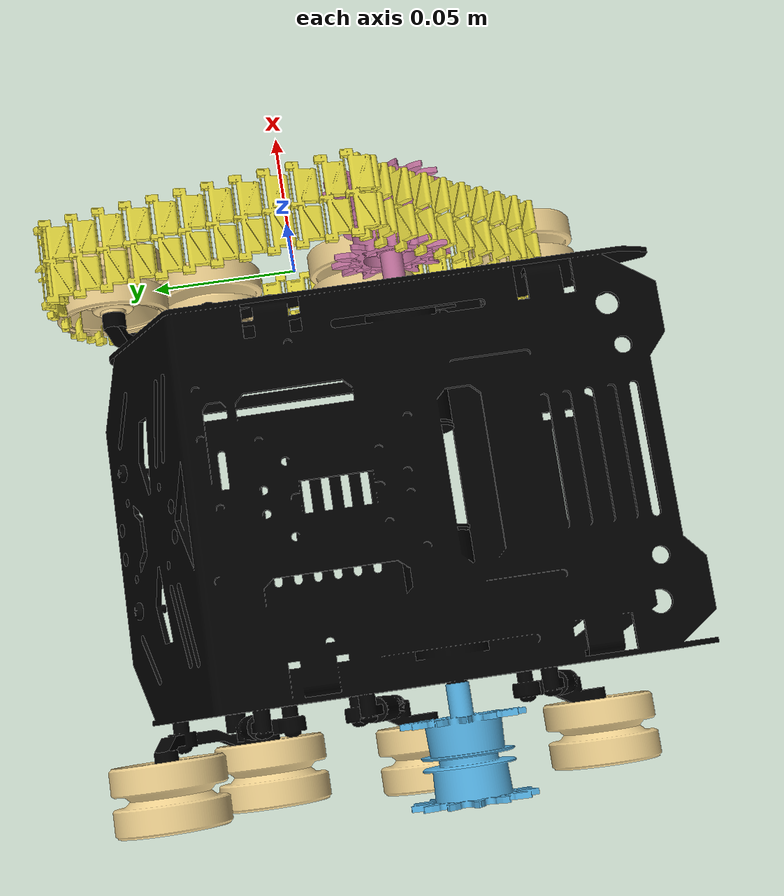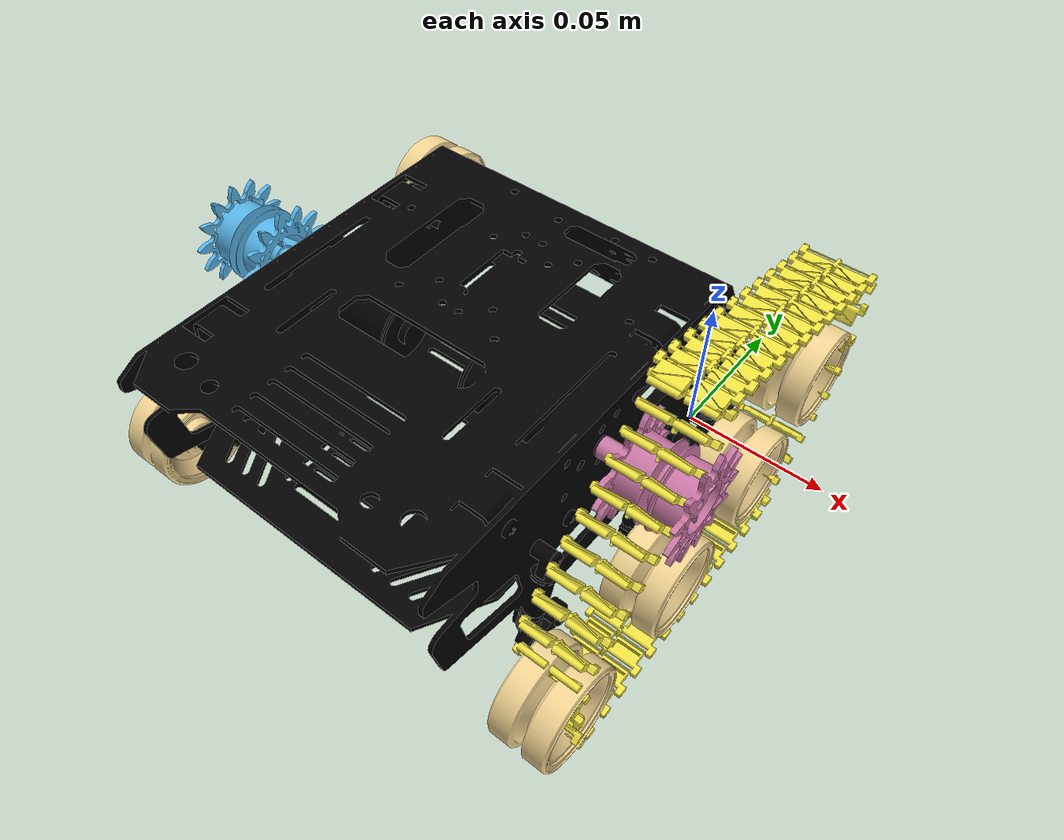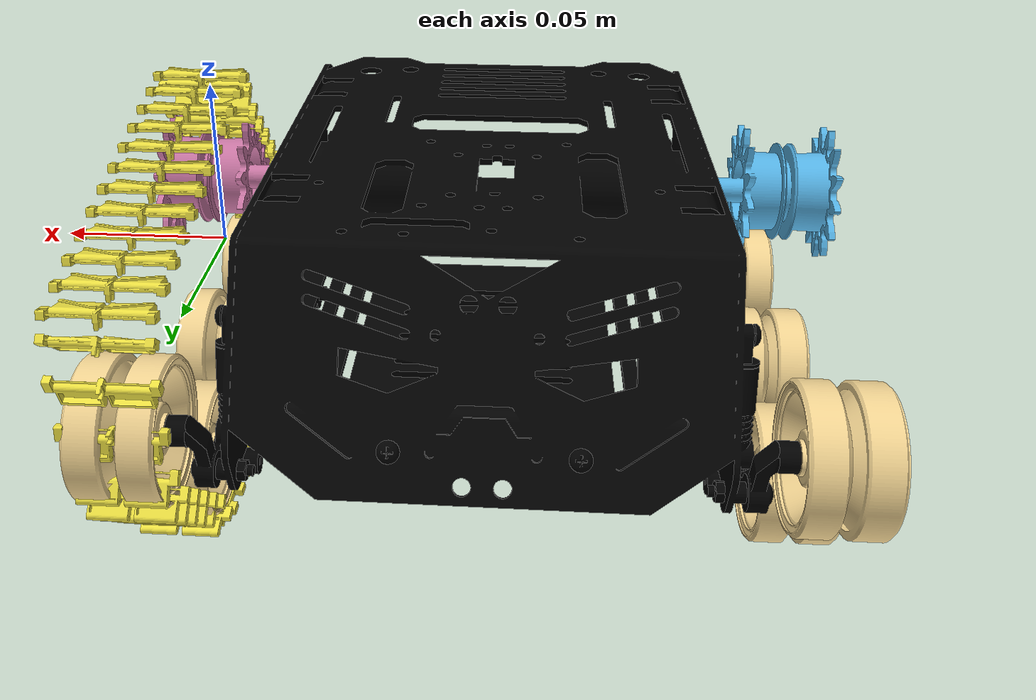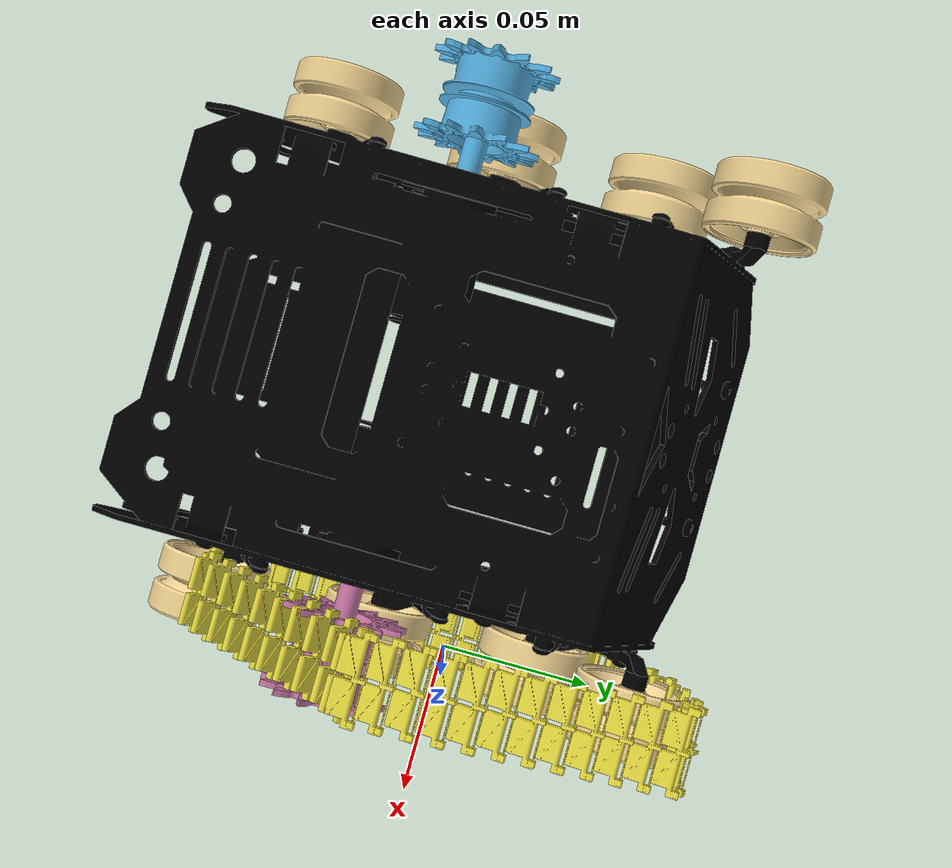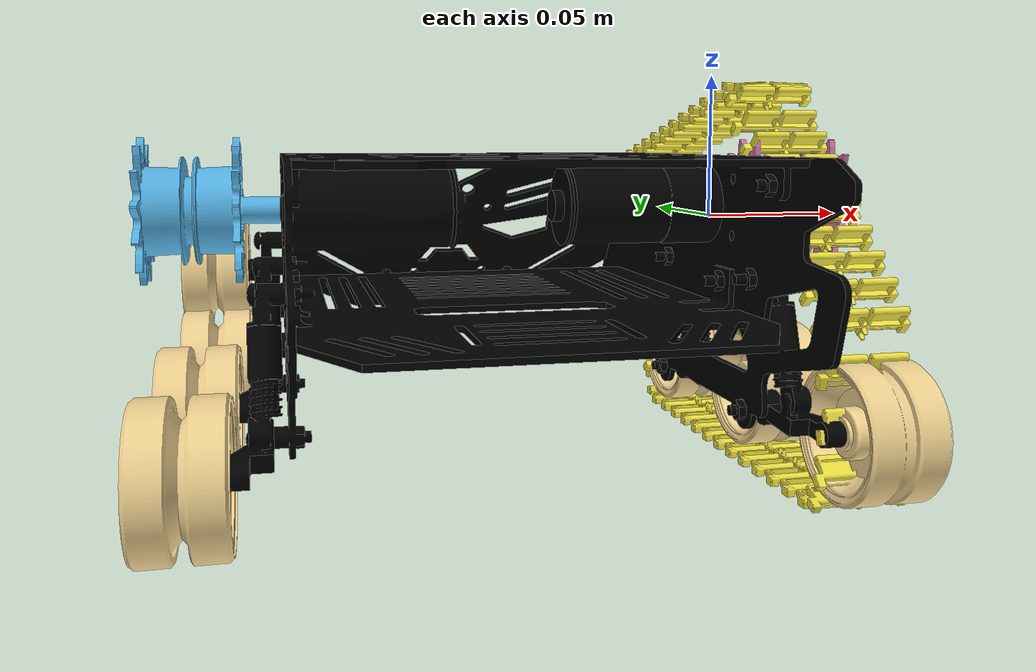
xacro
<?xml version="1.0" encoding="UTF-8"?>

<robot xmlns:xacro="http://www.ros.org/wiki/xacro" name="DFRbot">

    <!-- module -->
    <xacro:include filename="base.xacro" />
    <xacro:include
        filename="road_wheel.xacro" />
    <xacro:include filename="common.xacro" />
    <xacro:include
        filename="sprocket.xacro" />
    <xacro:include filename="track_path_fusion.xacro" />
    <!-- args -->
    <!-- dimensions / properties -->

    <!-- Right Sprocket -->
    <xacro:property name="rs_xyz"
        value="-0.003683312846951794 0.033058568904078316 0.0958176724476687" />
    <xacro:property
        name="rs_rpy"
        value="6.078575305090689e-16 -2.6599521792892063e-14 -1.5707963267948963" />
    <xacro:property
        name="rs_joint_xyz"
        value="-0.013663679999999827 -0.03474188000000015 0.006539760000000028" />
    <xacro:property
        name="rs_joint_rpy"
        value="-1.5707963267948648 -7.092844299934858e-16 -1.5707963267948912" />
    <xacro:property
        name="rs_inertial_xyz"
        value="4.041040893021375e-09 1.4369512937707497e-05 0.02455129089491322" />
    <xacro:property
        name="rs_inertial_rpy" value="1.2469549982861393e-62 -0.0 0.0" />
    <xacro:property
        name="rs_mass" value="0.09152151104684562" />
    <xacro:property name="rs_ixx"
        value="1.312943021186723e-05" />
    <xacro:property name="rs_iyy" value="1.3125134949870743e-05" />
    <xacro:property
        name="rs_izz" value="1.102396481554491e-05" />
    <xacro:property name="rs_ixy"
        value="-1.364702215166449e-15" />
    <xacro:property name="rs_iyz"
        value="-1.0407888211876016e-09" />
    <xacro:property name="rs_ixz"
        value="1.0267434169943288e-17" />

    <!-- Left Sprocket -->
    <xacro:property name="ls_xyz"
        value="-0.003683312846951634 -0.03305856890407353 -0.06983656251086988" />
    <xacro:property
        name="ls_rpy"
        value="-5.065392549852166e-16 1.3345386098308293e-14 1.5707963267948963" />
    <xacro:property
        name="ls_joint_xyz"
        value="-0.15266367999999983 -0.034741880000000995 0.006539760000000062" />
    <xacro:property
        name="ls_joint_rpy"
        value="1.5707963267948937 -7.092844299934858e-16 -1.5707963267948912" />
    <xacro:property
        name="ls_inertial_xyz"
        value="4.041038526025887e-09 1.4366010886163183e-05 0.024551290914634587" />
    <xacro:property
        name="ls_inertial_rpy" value="3.94430452610506e-31 -0.0 3.889384548663214e-62" />
    <xacro:property
        name="ls_mass" value="0.09152151104684574" />
    <xacro:property name="ls_ixx"
        value="1.3129430211868475e-05" />
    <xacro:property name="ls_iyy" value="1.312513494987214e-05" />
    <xacro:property
        name="ls_izz" value="1.1023964815545466e-05" />
    <xacro:property name="ls_ixy"
        value="-1.364227876715987e-15" />
    <xacro:property name="ls_iyz"
        value="-1.0407888212510166e-09" />
    <xacro:property name="ls_ixz"
        value="1.0191184439849799e-17" />

    <!-- Left Road Wheel 1 -->
    <xacro:property name="lw1_xyz"
        value="0.07013659583942188 -0.10186776229084465 0.07010007530246995" />
    <xacro:property
        name="lw1_rpy"
        value="1.5707963267948963 1.5707963267948881 0" />
    <xacro:property name="lw1_joint_xyz"
        value="-0.16696368000000036 0.06963123999999911 -0.024013450000000033" />
    <xacro:property
        name="lw1_joint_rpy"
        value="-1.570796326794895 -7.092844299934858e-16 -1.5707963267948912" />
    <xacro:property
        name="lw1_inertial_xyz"
        value="2.8461329648621357e-09 3.064652016604441e-09 -0.00958088928816288" />
    <xacro:property
        name="lw1_inertial_rpy"
        value="1.246954998286142e-62 -0.0 0.0" />
    <xacro:property name="lw1_mass"
        value="0.11216702343401005" />
    <xacro:property name="lw1_ixx" value="1.68783266885227e-05" />
    <xacro:property
        name="lw1_iyy" value="1.6878326689367083e-05" />
    <xacro:property name="lw1_izz"
        value="2.6216797929676883e-05" />
    <xacro:property name="lw1_ixy"
        value="-1.3552527156068686e-18" />
    <xacro:property name="lw1_iyz"
        value="-5.253236442911686e-19" />
    <xacro:property name="lw1_ixz"
        value="6.441695322810937e-18" />

    <!-- Left Road Wheel 2 -->
    <xacro:property name="lw2_xyz"
        value="0.004355632642285125 0.09857161061744062 -0.07010007530246995" />
    <xacro:property
        name="lw2_rpy"
        value="-1.570796326794897 -1.5707963267948883 0" />
    <xacro:property name="lw2_joint_xyz"
        value="-0.16546368000000009 0.035092679999999044 -0.055255860000000025" />
    <xacro:property
        name="lw2_joint_rpy"
        value="1.5707963267948981 -7.092844299934858e-16 -1.5707963267948912" />
    <xacro:property
        name="lw2_inertial_xyz"
        value="4.519537069036517e-09 3.73821126053997e-09 0.009580889288162987" />
    <xacro:property
        name="lw2_inertial_rpy"
        value="1.246954998286142e-62 -0.0 0.0" />
    <xacro:property name="lw2_mass"
        value="0.11216702343401003" />
    <xacro:property name="lw2_ixx" value="1.6878326688520098e-05" />
    <xacro:property
        name="lw2_iyy" value="1.6878326689365782e-05" />
    <xacro:property name="lw2_izz"
        value="2.6216797929678346e-05" />
    <xacro:property name="lw2_ixy"
        value="2.7105054312136455e-19" />
    <xacro:property name="lw2_iyz"
        value="-6.337438615397181e-19" />
    <xacro:property name="lw2_ixz"
        value="-6.333275105562395e-18" />

    <!-- Left Road Wheel 3 -->
    <xacro:property name="lw3_xyz"
        value="-0.12222553924811966 0.026045975176996396 0.07010007530246949" />
    <xacro:property
        name="lw3_rpy"
        value="1.5707963267948963 1.5707963267948917 0" />
    <xacro:property name="lw3_joint_xyz"
        value="-0.16796367999999942 -0.09050670000000123 -0.05623764999999994" />
    <xacro:property
        name="lw3_joint_rpy"
        value="-1.570796326794893 -7.092844299934858e-16 -1.5707963267948912" />
    <xacro:property
        name="lw3_inertial_xyz"
        value="3.139740201163477e-10 -1.8478067342897475e-09 -0.00958088928816352" />
    <xacro:property
        name="lw3_inertial_rpy"
        value="1.2469549982861418e-62 -0.0 0.0" />
    <xacro:property name="lw3_mass"
        value="0.11216702343401011" />
    <xacro:property name="lw3_ixx" value="1.68783266885214e-05" />
    <xacro:property
        name="lw3_iyy" value="1.6878326689363614e-05" />
    <xacro:property name="lw3_izz"
        value="2.6216797929676666e-05" />
    <xacro:property name="lw3_ixy"
        value="-1.0842021724853126e-19" />
    <xacro:property name="lw3_iyz"
        value="3.590493739155734e-20" />
    <xacro:property name="lw3_ixz" value="4.988340699471015e-18" />

    <!-- Left Road Wheel 4 -->
    <xacro:property
        name="lw4_xyz"
        value="-0.05801282256901676 -0.0387098860681079 0.07010007530246985" />
    <xacro:property
        name="lw4_rpy"
        value="1.5707963267948963 1.5707963267948926 0" />
    <xacro:property name="lw4_joint_xyz"
        value="-0.16796367999999975 -0.026022410000001096 -0.05650921999999998" />
    <xacro:property
        name="lw4_joint_rpy"
        value="-1.570796326794893 -7.092844299934858e-16 -1.5707963267948912" />
    <xacro:property
        name="lw4_inertial_xyz"
        value="-9.311303283965345e-10 1.4730904762672025e-09 -0.00958088928816327" />
    <xacro:property
        name="lw4_inertial_rpy"
        value="1.2469549982861418e-62 -0.0 0.0" />
    <xacro:property name="lw4_mass"
        value="0.11216702343401005" />
    <xacro:property name="lw4_ixx" value="1.68783266885214e-05" />
    <xacro:property
        name="lw4_iyy" value="1.687832668936535e-05" />
    <xacro:property name="lw4_izz"
        value="2.6216797929680135e-05" />
    <xacro:property name="lw4_ixy"
        value="2.168404344971221e-19" />
    <xacro:property name="lw4_iyz"
        value="-1.8090497758856318e-19" />
    <xacro:property name="lw4_ixz"
        value="5.524830873730051e-18" />

    <!-- Right Road Wheel 1 -->
    <xacro:property name="rw1_xyz"
        value="0.07013659583942143 -0.10186776229084438 0.09555415965607067" />
    <xacro:property
        name="rw1_rpy"
        value="1.570796326794897 -1.57079632679489 0" />
    <xacro:property name="rw1_joint_xyz"
        value="0.0006363199999996732 0.06963124000000014 -0.02401345000000007" />
    <xacro:property
        name="rw1_joint_rpy"
        value="-1.5707963267948917 -7.092844299934858e-16 -1.5707963267948912" />
    <xacro:property
        name="rw1_inertial_xyz"
        value="2.846133098088899e-09 3.06465188781857e-09 0.009580889268442597" />
    <xacro:property
        name="rw1_inertial_rpy"
        value="1.2469549982861416e-62 -0.0 -7.778769097326429e-62" />
    <xacro:property name="rw1_mass"
        value="0.11216702343400992" />
    <xacro:property name="rw1_ixx" value="1.687832668851904e-05" />
    <xacro:property
        name="rw1_iyy" value="1.687832668936459e-05" />
    <xacro:property name="rw1_izz"
        value="2.621679792967558e-05" />
    <xacro:property name="rw1_ixy"
        value="-7.0473141211560475e-19" />
    <xacro:property name="rw1_iyz"
        value="-1.2869003604066369e-18" />
    <xacro:property name="rw1_ixz"
        value="-5.185713141155922e-18" />

    <!-- Right Road Wheel 2 -->
    <xacro:property name="rw2_xyz"
        value="0.004355632642284655 0.09857161061744041 -0.09555415965607052" />
    <xacro:property
        name="rw2_rpy"
        value="-1.5707963267948963 1.57079632679489 0" />
    <xacro:property name="rw2_joint_xyz"
        value="-0.0008636800000000794 0.03509268000000005 -0.055255860000000066" />
    <xacro:property
        name="rw2_joint_rpy"
        value="1.5707963267949014 -7.092844299934858e-16 -1.5707963267948912" />
    <xacro:property
        name="rw2_inertial_xyz"
        value="4.51953711788633e-09 3.73821126053997e-09 -0.009580889268442328" />
    <xacro:property
        name="rw2_inertial_rpy"
        value="1.2469549982861416e-62 -0.0 7.778769097326429e-62" />
    <xacro:property name="rw2_mass"
        value="0.1121670234340099" />
    <xacro:property name="rw2_ixx" value="1.687832668851755e-05" />
    <xacro:property
        name="rw2_iyy" value="1.687832668936448e-05" />
    <xacro:property name="rw2_izz"
        value="2.6216797929676395e-05" />
    <xacro:property name="rw2_ixy"
        value="-3.5236570605775716e-19" />
    <xacro:property name="rw2_iyz"
        value="-2.1678146255511007e-18" />
    <xacro:property name="rw2_ixz"
        value="6.114061251346646e-18" />

    <!-- Right Road Wheel 3 -->
    <xacro:property name="rw3_xyz"
        value="-0.05801282256901665 -0.03870988606810794 0.09555415965606998" />
    <xacro:property
        name="rw3_rpy"
        value="1.570796326794897 -1.5707963267948937 0" />
    <xacro:property name="rw3_joint_xyz"
        value="0.0016363200000002515 -0.026022410000000062 -0.05650922000000003" />
    <xacro:property
        name="rw3_joint_rpy"
        value="-1.5707963267948937 -7.092844299934858e-16 -1.5707963267948912" />
    <xacro:property
        name="rw3_inertial_xyz"
        value="-9.311300042114113e-10 1.473090405212929e-09 0.009580889268442062" />
    <xacro:property
        name="rw3_inertial_rpy"
        value="-3.94430452610506e-31 -0.0 7.778769097326429e-62" />
    <xacro:property name="rw3_mass"
        value="0.11216702343401017" />
    <xacro:property name="rw3_ixx" value="1.6878326688521128e-05" />
    <xacro:property
        name="rw3_iyy" value="1.6878326689365498e-05" />
    <xacro:property name="rw3_izz"
        value="2.621679792968008e-05" />
    <xacro:property name="rw3_ixy"
        value="4.0657581468204303e-19" />
    <xacro:property name="rw3_iyz"
        value="-3.777102651728527e-19" />
    <xacro:property name="rw3_ixz"
        value="-6.823500060994002e-18" />

    <!-- Right Road Wheel 4 -->
    <xacro:property name="rw4_xyz"
        value="-0.12222553924811948 0.026045975176995792 0.09555415965606973" />
    <xacro:property
        name="rw4_rpy"
        value="1.5707963267948966 -1.570796326794858 0" />
    <xacro:property name="rw4_joint_xyz"
        value="0.0016363200000005975 -0.0905067000000002 -0.05623764999999998" />
    <xacro:property
        name="rw4_joint_rpy"
        value="-1.5707963267948937 -7.092844299934858e-16 -1.5707963267948912" />
    <xacro:property
        name="rw4_inertial_xyz"
        value="3.1397393129850573e-10 -1.8478075070049727e-09 0.00958088926844195" />
    <xacro:property
        name="rw4_inertial_rpy"
        value="-3.94430452610506e-31 -0.0 0.0" />
    <xacro:property name="rw4_mass"
        value="0.11216702343400986" />
    <xacro:property name="rw4_ixx" value="1.6878326688519393e-05" />
    <xacro:property
        name="rw4_iyy" value="1.6878326689361337e-05" />
    <xacro:property name="rw4_izz"
        value="2.621679792966886e-05" />
    <xacro:property name="rw4_ixy"
        value="-9.757819552369856e-19" />
    <xacro:property name="rw4_iyz"
        value="3.6338682925404645e-18" />
    <xacro:property name="rw4_ixz"
        value="-1.027822913419722e-17" />

    <!-- assembly -->
    <xacro:base />

    <xacro:sprocket
        side="left"
        xyz="${ls_xyz}" rpy="${ls_rpy}"
        joint_xyz="${ls_joint_xyz}" joint_rpy="${ls_joint_rpy}"
        inertial_xyz="${ls_inertial_xyz}" inertial_rpy="${ls_inertial_rpy}"
        mass="${ls_mass}"
        ixx="${ls_ixx}" iyy="${ls_iyy}" izz="${ls_izz}"
        ixy="${ls_ixy}" iyz="${ls_iyz}" ixz="${ls_ixz}"
    />

    <!-- Left Road Wheels -->
    <xacro:road_wheel side="left" index="1"
        xyz="${lw1_xyz}" rpy="${lw1_rpy}"
        joint_xyz="${lw1_joint_xyz}" joint_rpy="${lw1_joint_rpy}"
        inertial_xyz="${lw1_inertial_xyz}" inertial_rpy="${lw1_inertial_rpy}"
        mass="${lw1_mass}"
        ixx="${lw1_ixx}" iyy="${lw1_iyy}" izz="${lw1_izz}"
        ixy="${lw1_ixy}" iyz="${lw1_iyz}" ixz="${lw1_ixz}" />

    <xacro:road_wheel side="left" index="2"
        xyz="${lw2_xyz}" rpy="${lw2_rpy}"
        joint_xyz="${lw2_joint_xyz}" joint_rpy="${lw2_joint_rpy}"
        inertial_xyz="${lw2_inertial_xyz}" inertial_rpy="${lw2_inertial_rpy}"
        mass="${lw2_mass}"
        ixx="${lw2_ixx}" iyy="${lw2_iyy}" izz="${lw2_izz}"
        ixy="${lw2_ixy}" iyz="${lw2_iyz}" ixz="${lw2_ixz}" />

    <xacro:road_wheel side="left" index="3"
        xyz="${lw3_xyz}" rpy="${lw3_rpy}"
        joint_xyz="${lw3_joint_xyz}" joint_rpy="${lw3_joint_rpy}"
        inertial_xyz="${lw3_inertial_xyz}" inertial_rpy="${lw3_inertial_rpy}"
        mass="${lw3_mass}"
        ixx="${lw3_ixx}" iyy="${lw3_iyy}" izz="${lw3_izz}"
        ixy="${lw3_ixy}" iyz="${lw3_iyz}" ixz="${lw3_ixz}" />

    <xacro:road_wheel side="left" index="4"
        xyz="${lw4_xyz}" rpy="${lw4_rpy}"
        joint_xyz="${lw4_joint_xyz}" joint_rpy="${lw4_joint_rpy}"
        inertial_xyz="${lw4_inertial_xyz}" inertial_rpy="${lw4_inertial_rpy}"
        mass="${lw4_mass}"
        ixx="${lw4_ixx}" iyy="${lw4_iyy}" izz="${lw4_izz}"
        ixy="${lw4_ixy}" iyz="${lw4_iyz}" ixz="${lw4_ixz}" />

    <xacro:sprocket
        side="right"
        xyz="${rs_xyz}" rpy="${rs_rpy}"
        joint_xyz="${rs_joint_xyz}" joint_rpy="${rs_joint_rpy}"
        inertial_xyz="${rs_inertial_xyz}" inertial_rpy="${rs_inertial_rpy}"
        mass="${rs_mass}"
        ixx="${rs_ixx}" iyy="${rs_iyy}" izz="${rs_izz}"
        ixy="${rs_ixy}" iyz="${rs_iyz}" ixz="${rs_ixz}" />

    <!-- Right Road Wheels -->
    <xacro:road_wheel side="right" index="1"
        xyz="${rw1_xyz}" rpy="${rw1_rpy}"
        joint_xyz="${rw1_joint_xyz}" joint_rpy="${rw1_joint_rpy}"
        inertial_xyz="${rw1_inertial_xyz}" inertial_rpy="${rw1_inertial_rpy}"
        mass="${rw1_mass}"
        ixx="${rw1_ixx}" iyy="${rw1_iyy}" izz="${rw1_izz}"
        ixy="${rw1_ixy}" iyz="${rw1_iyz}" ixz="${rw1_ixz}" />

    <xacro:road_wheel side="right"
        index="2"
        xyz="${rw2_xyz}" rpy="${rw2_rpy}"
        joint_xyz="${rw2_joint_xyz}" joint_rpy="${rw2_joint_rpy}"
        inertial_xyz="${rw2_inertial_xyz}" inertial_rpy="${rw2_inertial_rpy}"
        mass="${rw2_mass}"
        ixx="${rw2_ixx}" iyy="${rw2_iyy}" izz="${rw2_izz}"
        ixy="${rw2_ixy}" iyz="${rw2_iyz}" ixz="${rw2_ixz}" />

    <xacro:road_wheel side="right"
        index="3"
        xyz="${rw3_xyz}" rpy="${rw3_rpy}"
        joint_xyz="${rw3_joint_xyz}" joint_rpy="${rw3_joint_rpy}"
        inertial_xyz="${rw3_inertial_xyz}" inertial_rpy="${rw3_inertial_rpy}"
        mass="${rw3_mass}"
        ixx="${rw3_ixx}" iyy="${rw3_iyy}" izz="${rw3_izz}"
        ixy="${rw3_ixy}" iyz="${rw3_iyz}" ixz="${rw3_ixz}" />

    <xacro:road_wheel side="right"
        index="4"
        xyz="${rw4_xyz}" rpy="${rw4_rpy}"
        joint_xyz="${rw4_joint_xyz}" joint_rpy="${rw4_joint_rpy}"
        inertial_xyz="${rw4_inertial_xyz}" inertial_rpy="${rw4_inertial_rpy}"
        mass="${rw4_mass}"
        ixx="${rw4_ixx}" iyy="${rw4_iyy}" izz="${rw4_izz}"
        ixy="${rw4_ixy}" iyz="${rw4_iyz}" ixz="${rw4_ixz}" />

    <xacro:track_path_fusion parent="base_link" prefix="left" lateral="0.0"
        drive_joint="base_link_left_drive_sprocket_joint" phase_multiplier="1"/>
</robot>

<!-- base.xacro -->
<robot xmlns:xacro="http://www.ros.org/wiki/xacro">
    <xacro:macro name="base">
        <link name="base_link">
            <inertial>
                <origin xyz="-0.08316536589651169 -0.019644178306641058 -0.007641892965444989"
                    rpy="0.0 0.0 0.0" />
                <mass value="1.5501778272883482" />
                <inertia ixx="0.00455964362186642" iyy="0.005129830164751709"
                    izz="0.007993318308848016"
                    ixy="8.6548194980593e-06" iyz="0.0003548756538293898"
                    ixz="-1.0413670358950416e-05" />
            </inertial>
            <visual name="base_link_visual">
                <origin xyz="0.0 0.0 0.0" rpy="0.0 0.0 0.0" />
                <geometry>
                    <mesh filename="../meshes/base_link.stl" scale="0.001 0.001 0.001" />
                </geometry>
                <material name="base_link" />
            </visual>
            <collision name="base_link_collision">
                <origin xyz="0.0 0.0 0.0" rpy="0.0 0.0 0.0" />
                <geometry>
                    <mesh filename="../meshes/base_link.stl" scale="0.001 0.001 0.001" />
                </geometry>
            </collision>
        </link>
    </xacro:macro>

</robot>

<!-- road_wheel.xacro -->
<robot xmlns:xacro="http://www.ros.org/wiki/xacro">
    <xacro:macro name="road_wheel" params="side index xyz rpy joint_xyz joint_rpy inertial_xyz inertial_rpy mass ixx iyy izz ixy iyz ixz">
        <link name="${side}_road_wheel_${index}">
            <inertial>
                <origin xyz="${inertial_xyz}"
                    rpy="${inertial_rpy}" />
                <mass value="${mass}" />
                <inertia ixx="${ixx}" iyy="${iyy}"
                    izz="${izz}" ixy="${ixy}"
                    iyz="${iyz}" ixz="${ixz}" />
            </inertial>
            <visual name="${side}_road_wheel_${index}_visual">
                <origin xyz="${xyz}"
                    rpy="${rpy}" />
                <geometry>
                    <mesh filename="../meshes/${side}_road_wheel_${index}.stl"
                        scale="0.001 0.001 0.001" />
                </geometry>
                <material name="road_wheel" />
            </visual>
            <collision name="${side}_road_wheel_${index}_collision">
                <origin xyz="${xyz}"
                    rpy="${rpy}" />
                <geometry>
                    <mesh filename="../meshes/${side}_road_wheel_${index}.stl"
                        scale="0.001 0.001 0.001" />
                </geometry>
            </collision>
        </link>
        <joint name="base_link_${side}_road_wheel_${index}_joint" type="continuous">
            <origin xyz="${joint_xyz}"
                rpy="${joint_rpy}" />
            <parent link="base_link" />
            <child link="${side}_road_wheel_${index}" />
            <axis xyz="-1.2645626016280148e-31 -1.7965940591173076e-15 -0.9999999999999999" />
        </joint>
    </xacro:macro>
</robot>

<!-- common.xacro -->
<robot xmlns:xacro="http://www.ros.org/wiki/xacro">
    <material name="base_link">
        <color rgba="0.0 0.0 0.0 1.0" />
    </material>
    <material name="road_wheel">
        <color rgba="0.957 0.839 0.576 1.0" />
    </material>
    <material name="sproket">
        <color rgba="0.98 0.8 0.4 1.0" />
    </material>
    <material name="track_pad">
        <color rgba="0.475 0.475 0.475 1.0" />
    </material>

</robot>

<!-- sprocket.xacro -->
<robot xmlns:xacro="http://www.ros.org/wiki/xacro">
    <xacro:macro name="sprocket"
        params="side  xyz rpy joint_xyz joint_rpy inertial_xyz inertial_rpy mass ixx iyy izz ixy iyz ixz"
    >
        <link name="${side}_drive_sprocket">
            <inertial>
                <origin xyz="${inertial_xyz}"
                    rpy="${inertial_rpy}" />
                <mass value="${mass}" />
                <inertia ixx="${ixx}" iyy="${iyy}"
                    izz="${izz}" ixy="${ixy}"
                    iyz="${iyz}" ixz="${ixz}" />
            </inertial>
            <visual name="${side}_drive_sprocket_visual">
                <origin xyz="${xyz}"
                    rpy="${rpy}" />
                <geometry>
                    <mesh filename="../meshes/${side}_drive_sprocket.stl" scale="0.001 0.001 0.001" />
                </geometry>
            </visual>
            <collision name="${side}_drive_sprocket_collision">
                <origin xyz="${xyz}"
                    rpy="${rpy}" />
                <geometry>
                    <mesh filename="../meshes/${side}_drive_sprocket.stl" scale="0.001 0.001 0.001" />
                </geometry>
            </collision>
        </link>

        <joint name="base_link_${side}_drive_sprocket_joint" type="continuous">
            <origin xyz="${joint_xyz}"
                rpy="${joint_rpy}" />
            <parent link="base_link" />
            <child link="${side}_drive_sprocket" />
            <axis xyz="1.2645626016280148e-31 2.700138880472324e-15 -0.9999999999999999" />
        </joint>
    </xacro:macro>
</robot>

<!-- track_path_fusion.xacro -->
<!-- Fusion Sketch4 path: 49 pad visuals on one link, no per-pad links/joints. -->
<robot xmlns:xacro="http://www.ros.org/wiki/xacro">
  <xacro:macro name="track_path_fusion" params="parent prefix lateral:=0.067 flip:=4.712389 drive_joint phase_multiplier:=1">
    <link name="${prefix}_track_carrier">
      <visual name="${prefix}_pad_00_visual">
        <origin xyz="${0.082847 + cos((2.902418 + flip)) * (-0.012097) + sin((2.902418 + flip)) * (-0.010542)} -0.000307 ${0.020664 - sin((2.902418 + flip)) * (-0.012097) + cos((2.902418 + flip)) * (-0.010542)}" rpy="${(2.902418 + flip)} 0 1.570796"/>
        <geometry><mesh filename="../meshes/track_pad.stl" scale="0.001 0.001 0.001"/></geometry>
        <material name="track_pad_material"/>
      </visual>
      <visual name="${prefix}_pad_01_visual">
        <origin xyz="${0.073133 + cos((2.902418 + flip)) * (-0.012097) + sin((2.902418 + flip)) * (-0.010542)} -0.000307 ${0.023033 - sin((2.902418 + flip)) * (-0.012097) + cos((2.902418 + flip)) * (-0.010542)}" rpy="${(2.902418 + flip)} 0 1.570796"/>
        <geometry><mesh filename="../meshes/track_pad.stl" scale="0.001 0.001 0.001"/></geometry>
        <material name="track_pad_material"/>
      </visual>
      <visual name="${prefix}_pad_02_visual">
        <origin xyz="${0.063418 + cos((2.902418 + flip)) * (-0.012097) + sin((2.902418 + flip)) * (-0.010542)} -0.000307 ${0.025401 - sin((2.902418 + flip)) * (-0.012097) + cos((2.902418 + flip)) * (-0.010542)}" rpy="${(2.902418 + flip)} 0 1.570796"/>
        <geometry><mesh filename="../meshes/track_pad.stl" scale="0.001 0.001 0.001"/></geometry>
        <material name="track_pad_material"/>
      </visual>
      <visual name="${prefix}_pad_03_visual">
        <origin xyz="${0.053704 + cos((2.902418 + flip)) * (-0.012097) + sin((2.902418 + flip)) * (-0.010542)} -0.000307 ${0.027770 - sin((2.902418 + flip)) * (-0.012097) + cos((2.902418 + flip)) * (-0.010542)}" rpy="${(2.902418 + flip)} 0 1.570796"/>
        <geometry><mesh filename="../meshes/track_pad.stl" scale="0.001 0.001 0.001"/></geometry>
        <material name="track_pad_material"/>
      </visual>
      <visual name="${prefix}_pad_04_visual">
        <origin xyz="${0.043990 + cos((2.902418 + flip)) * (-0.012097) + sin((2.902418 + flip)) * (-0.010542)} -0.000307 ${0.030139 - sin((2.902418 + flip)) * (-0.012097) + cos((2.902418 + flip)) * (-0.010542)}" rpy="${(2.902418 + flip)} 0 1.570796"/>
        <geometry><mesh filename="../meshes/track_pad.stl" scale="0.001 0.001 0.001"/></geometry>
        <material name="track_pad_material"/>
      </visual>
      <visual name="${prefix}_pad_05_visual">
        <origin xyz="${0.034276 + cos((2.902418 + flip)) * (-0.012097) + sin((2.902418 + flip)) * (-0.010542)} -0.000307 ${0.032508 - sin((2.902418 + flip)) * (-0.012097) + cos((2.902418 + flip)) * (-0.010542)}" rpy="${(2.902418 + flip)} 0 1.570796"/>
        <geometry><mesh filename="../meshes/track_pad.stl" scale="0.001 0.001 0.001"/></geometry>
        <material name="track_pad_material"/>
      </visual>
      <visual name="${prefix}_pad_06_visual">
        <origin xyz="${0.024561 + cos((2.902418 + flip)) * (-0.012097) + sin((2.902418 + flip)) * (-0.010542)} -0.000307 ${0.034876 - sin((2.902418 + flip)) * (-0.012097) + cos((2.902418 + flip)) * (-0.010542)}" rpy="${(2.902418 + flip)} 0 1.570796"/>
        <geometry><mesh filename="../meshes/track_pad.stl" scale="0.001 0.001 0.001"/></geometry>
        <material name="track_pad_material"/>
      </visual>
      <visual name="${prefix}_pad_07_visual">
        <origin xyz="${0.014847 + cos((2.902418 + flip)) * (-0.012097) + sin((2.902418 + flip)) * (-0.010542)} -0.000307 ${0.037245 - sin((2.902418 + flip)) * (-0.012097) + cos((2.902418 + flip)) * (-0.010542)}" rpy="${(2.902418 + flip)} 0 1.570796"/>
        <geometry><mesh filename="../meshes/track_pad.stl" scale="0.001 0.001 0.001"/></geometry>
        <material name="track_pad_material"/>
      </visual>
      <visual name="${prefix}_pad_08_visual">
        <origin xyz="${0.005133 + cos((2.902418 + flip)) * (-0.012097) + sin((2.902418 + flip)) * (-0.010542)} -0.000307 ${0.039614 - sin((2.902418 + flip)) * (-0.012097) + cos((2.902418 + flip)) * (-0.010542)}" rpy="${(2.902418 + flip)} 0 1.570796"/>
        <geometry><mesh filename="../meshes/track_pad.stl" scale="0.001 0.001 0.001"/></geometry>
        <material name="track_pad_material"/>
      </visual>
      <visual name="${prefix}_pad_09_visual">
        <origin xyz="${-0.004582 + cos((2.902418 + flip)) * (-0.012097) + sin((2.902418 + flip)) * (-0.010542)} -0.000307 ${0.041983 - sin((2.902418 + flip)) * (-0.012097) + cos((2.902418 + flip)) * (-0.010542)}" rpy="${(2.902418 + flip)} 0 1.570796"/>
        <geometry><mesh filename="../meshes/track_pad.stl" scale="0.001 0.001 0.001"/></geometry>
        <material name="track_pad_material"/>
      </visual>
      <visual name="${prefix}_pad_10_visual">
        <origin xyz="${-0.014296 + cos((2.902418 + flip)) * (-0.012097) + sin((2.902418 + flip)) * (-0.010542)} -0.000307 ${0.044351 - sin((2.902418 + flip)) * (-0.012097) + cos((2.902418 + flip)) * (-0.010542)}" rpy="${(2.902418 + flip)} 0 1.570796"/>
        <geometry><mesh filename="../meshes/track_pad.stl" scale="0.001 0.001 0.001"/></geometry>
        <material name="track_pad_material"/>
      </visual>
      <visual name="${prefix}_pad_11_visual">
        <origin xyz="${-0.024021 + cos((2.982943 + flip)) * (-0.012097) + sin((2.982943 + flip)) * (-0.010542)} -0.000307 ${0.046670 - sin((2.982943 + flip)) * (-0.012097) + cos((2.982943 + flip)) * (-0.010542)}" rpy="${(2.982943 + flip)} 0 1.570796"/>
        <geometry><mesh filename="../meshes/track_pad.stl" scale="0.001 0.001 0.001"/></geometry>
        <material name="track_pad_material"/>
      </visual>
      <visual name="${prefix}_pad_12_visual">
        <origin xyz="${-0.033732 + cos((3.615384 + flip)) * (-0.012097) + sin((3.615384 + flip)) * (-0.010542)} -0.000307 ${0.045127 - sin((3.615384 + flip)) * (-0.012097) + cos((3.615384 + flip)) * (-0.010542)}" rpy="${(3.615384 + flip)} 0 1.570796"/>
        <geometry><mesh filename="../meshes/track_pad.stl" scale="0.001 0.001 0.001"/></geometry>
        <material name="track_pad_material"/>
      </visual>
      <visual name="${prefix}_pad_13_visual">
        <origin xyz="${-0.041281 + cos((-2.355231 + flip)) * (-0.012097) + sin((-2.355231 + flip)) * (-0.010542)} -0.000307 ${0.038648 - sin((-2.355231 + flip)) * (-0.012097) + cos((-2.355231 + flip)) * (-0.010542)}" rpy="${(-2.355231 + flip)} 0 1.570796"/>
        <geometry><mesh filename="../meshes/track_pad.stl" scale="0.001 0.001 0.001"/></geometry>
        <material name="track_pad_material"/>
      </visual>
      <visual name="${prefix}_pad_14_visual">
        <origin xyz="${-0.048345 + cos((-2.355231 + flip)) * (-0.012097) + sin((-2.355231 + flip)) * (-0.010542)} -0.000307 ${0.031571 - sin((-2.355231 + flip)) * (-0.012097) + cos((-2.355231 + flip)) * (-0.010542)}" rpy="${(-2.355231 + flip)} 0 1.570796"/>
        <geometry><mesh filename="../meshes/track_pad.stl" scale="0.001 0.001 0.001"/></geometry>
        <material name="track_pad_material"/>
      </visual>
      <visual name="${prefix}_pad_15_visual">
        <origin xyz="${-0.055408 + cos((-2.355231 + flip)) * (-0.012097) + sin((-2.355231 + flip)) * (-0.010542)} -0.000307 ${0.024494 - sin((-2.355231 + flip)) * (-0.012097) + cos((-2.355231 + flip)) * (-0.010542)}" rpy="${(-2.355231 + flip)} 0 1.570796"/>
        <geometry><mesh filename="../meshes/track_pad.stl" scale="0.001 0.001 0.001"/></geometry>
        <material name="track_pad_material"/>
      </visual>
      <visual name="${prefix}_pad_16_visual">
        <origin xyz="${-0.062472 + cos((-2.355231 + flip)) * (-0.012097) + sin((-2.355231 + flip)) * (-0.010542)} -0.000307 ${0.017416 - sin((-2.355231 + flip)) * (-0.012097) + cos((-2.355231 + flip)) * (-0.010542)}" rpy="${(-2.355231 + flip)} 0 1.570796"/>
        <geometry><mesh filename="../meshes/track_pad.stl" scale="0.001 0.001 0.001"/></geometry>
        <material name="track_pad_material"/>
      </visual>
      <visual name="${prefix}_pad_17_visual">
        <origin xyz="${-0.069535 + cos((-2.355231 + flip)) * (-0.012097) + sin((-2.355231 + flip)) * (-0.010542)} -0.000307 ${0.010339 - sin((-2.355231 + flip)) * (-0.012097) + cos((-2.355231 + flip)) * (-0.010542)}" rpy="${(-2.355231 + flip)} 0 1.570796"/>
        <geometry><mesh filename="../meshes/track_pad.stl" scale="0.001 0.001 0.001"/></geometry>
        <material name="track_pad_material"/>
      </visual>
      <visual name="${prefix}_pad_18_visual">
        <origin xyz="${-0.076599 + cos((-2.355231 + flip)) * (-0.012097) + sin((-2.355231 + flip)) * (-0.010542)} -0.000307 ${0.003262 - sin((-2.355231 + flip)) * (-0.012097) + cos((-2.355231 + flip)) * (-0.010542)}" rpy="${(-2.355231 + flip)} 0 1.570796"/>
        <geometry><mesh filename="../meshes/track_pad.stl" scale="0.001 0.001 0.001"/></geometry>
        <material name="track_pad_material"/>
      </visual>
      <visual name="${prefix}_pad_19_visual">
        <origin xyz="${-0.083662 + cos((-2.355231 + flip)) * (-0.012097) + sin((-2.355231 + flip)) * (-0.010542)} -0.000307 ${-0.003815 - sin((-2.355231 + flip)) * (-0.012097) + cos((-2.355231 + flip)) * (-0.010542)}" rpy="${(-2.355231 + flip)} 0 1.570796"/>
        <geometry><mesh filename="../meshes/track_pad.stl" scale="0.001 0.001 0.001"/></geometry>
        <material name="track_pad_material"/>
      </visual>
      <visual name="${prefix}_pad_20_visual">
        <origin xyz="${-0.090726 + cos((-2.355231 + flip)) * (-0.012097) + sin((-2.355231 + flip)) * (-0.010542)} -0.000307 ${-0.010892 - sin((-2.355231 + flip)) * (-0.012097) + cos((-2.355231 + flip)) * (-0.010542)}" rpy="${(-2.355231 + flip)} 0 1.570796"/>
        <geometry><mesh filename="../meshes/track_pad.stl" scale="0.001 0.001 0.001"/></geometry>
        <material name="track_pad_material"/>
      </visual>
      <visual name="${prefix}_pad_21_visual">
        <origin xyz="${-0.097762 + cos((3.988948 + flip)) * (-0.012097) + sin((3.988948 + flip)) * (-0.010542)} -0.000307 ${-0.017996 - sin((3.988948 + flip)) * (-0.012097) + cos((3.988948 + flip)) * (-0.010542)}" rpy="${(3.988948 + flip)} 0 1.570796"/>
        <geometry><mesh filename="../meshes/track_pad.stl" scale="0.001 0.001 0.001"/></geometry>
        <material name="track_pad_material"/>
      </visual>
      <visual name="${prefix}_pad_22_visual">
        <origin xyz="${-0.102351 + cos((4.471962 + flip)) * (-0.012097) + sin((4.471962 + flip)) * (-0.010542)} -0.000307 ${-0.026770 - sin((4.471962 + flip)) * (-0.012097) + cos((4.471962 + flip)) * (-0.010542)}" rpy="${(4.471962 + flip)} 0 1.570796"/>
        <geometry><mesh filename="../meshes/track_pad.stl" scale="0.001 0.001 0.001"/></geometry>
        <material name="track_pad_material"/>
      </visual>
      <visual name="${prefix}_pad_23_visual">
        <origin xyz="${-0.102340 + cos((4.954977 + flip)) * (-0.012097) + sin((4.954977 + flip)) * (-0.010542)} -0.000307 ${-0.036672 - sin((4.954977 + flip)) * (-0.012097) + cos((4.954977 + flip)) * (-0.010542)}" rpy="${(4.954977 + flip)} 0 1.570796"/>
        <geometry><mesh filename="../meshes/track_pad.stl" scale="0.001 0.001 0.001"/></geometry>
        <material name="track_pad_material"/>
      </visual>
      <visual name="${prefix}_pad_24_visual">
        <origin xyz="${-0.097732 + cos((5.437991 + flip)) * (-0.012097) + sin((5.437991 + flip)) * (-0.010542)} -0.000307 ${-0.045436 - sin((5.437991 + flip)) * (-0.012097) + cos((5.437991 + flip)) * (-0.010542)}" rpy="${(5.437991 + flip)} 0 1.570796"/>
        <geometry><mesh filename="../meshes/track_pad.stl" scale="0.001 0.001 0.001"/></geometry>
        <material name="track_pad_material"/>
      </visual>
      <visual name="${prefix}_pad_25_visual">
        <origin xyz="${-0.089580 + cos((5.921006 + flip)) * (-0.012097) + sin((5.921006 + flip)) * (-0.010542)} -0.000307 ${-0.051057 - sin((5.921006 + flip)) * (-0.012097) + cos((5.921006 + flip)) * (-0.010542)}" rpy="${(5.921006 + flip)} 0 1.570796"/>
        <geometry><mesh filename="../meshes/track_pad.stl" scale="0.001 0.001 0.001"/></geometry>
        <material name="track_pad_material"/>
      </visual>
      <visual name="${prefix}_pad_26_visual">
        <origin xyz="${-0.079744 + cos((-0.003954 + flip)) * (-0.012097) + sin((-0.003954 + flip)) * (-0.010542)} -0.000307 ${-0.052410 - sin((-0.003954 + flip)) * (-0.012097) + cos((-0.003954 + flip)) * (-0.010542)}" rpy="${(-0.003954 + flip)} 0 1.570796"/>
        <geometry><mesh filename="../meshes/track_pad.stl" scale="0.001 0.001 0.001"/></geometry>
        <material name="track_pad_material"/>
      </visual>
      <visual name="${prefix}_pad_27_visual">
        <origin xyz="${-0.069745 + cos((-0.003954 + flip)) * (-0.012097) + sin((-0.003954 + flip)) * (-0.010542)} -0.000307 ${-0.052450 - sin((-0.003954 + flip)) * (-0.012097) + cos((-0.003954 + flip)) * (-0.010542)}" rpy="${(-0.003954 + flip)} 0 1.570796"/>
        <geometry><mesh filename="../meshes/track_pad.stl" scale="0.001 0.001 0.001"/></geometry>
        <material name="track_pad_material"/>
      </visual>
      <visual name="${prefix}_pad_28_visual">
        <origin xyz="${-0.059746 + cos((-0.003954 + flip)) * (-0.012097) + sin((-0.003954 + flip)) * (-0.010542)} -0.000307 ${-0.052490 - sin((-0.003954 + flip)) * (-0.012097) + cos((-0.003954 + flip)) * (-0.010542)}" rpy="${(-0.003954 + flip)} 0 1.570796"/>
        <geometry><mesh filename="../meshes/track_pad.stl" scale="0.001 0.001 0.001"/></geometry>
        <material name="track_pad_material"/>
      </visual>
      <visual name="${prefix}_pad_29_visual">
        <origin xyz="${-0.049748 + cos((-0.003954 + flip)) * (-0.012097) + sin((-0.003954 + flip)) * (-0.010542)} -0.000307 ${-0.052529 - sin((-0.003954 + flip)) * (-0.012097) + cos((-0.003954 + flip)) * (-0.010542)}" rpy="${(-0.003954 + flip)} 0 1.570796"/>
        <geometry><mesh filename="../meshes/track_pad.stl" scale="0.001 0.001 0.001"/></geometry>
        <material name="track_pad_material"/>
      </visual>
      <visual name="${prefix}_pad_30_visual">
        <origin xyz="${-0.039749 + cos((-0.003954 + flip)) * (-0.012097) + sin((-0.003954 + flip)) * (-0.010542)} -0.000307 ${-0.052569 - sin((-0.003954 + flip)) * (-0.012097) + cos((-0.003954 + flip)) * (-0.010542)}" rpy="${(-0.003954 + flip)} 0 1.570796"/>
        <geometry><mesh filename="../meshes/track_pad.stl" scale="0.001 0.001 0.001"/></geometry>
        <material name="track_pad_material"/>
      </visual>
      <visual name="${prefix}_pad_31_visual">
        <origin xyz="${-0.029750 + cos((-0.003954 + flip)) * (-0.012097) + sin((-0.003954 + flip)) * (-0.010542)} -0.000307 ${-0.052608 - sin((-0.003954 + flip)) * (-0.012097) + cos((-0.003954 + flip)) * (-0.010542)}" rpy="${(-0.003954 + flip)} 0 1.570796"/>
        <geometry><mesh filename="../meshes/track_pad.stl" scale="0.001 0.001 0.001"/></geometry>
        <material name="track_pad_material"/>
      </visual>
      <visual name="${prefix}_pad_32_visual">
        <origin xyz="${-0.019751 + cos((-0.003954 + flip)) * (-0.012097) + sin((-0.003954 + flip)) * (-0.010542)} -0.000307 ${-0.052648 - sin((-0.003954 + flip)) * (-0.012097) + cos((-0.003954 + flip)) * (-0.010542)}" rpy="${(-0.003954 + flip)} 0 1.570796"/>
        <geometry><mesh filename="../meshes/track_pad.stl" scale="0.001 0.001 0.001"/></geometry>
        <material name="track_pad_material"/>
      </visual>
      <visual name="${prefix}_pad_33_visual">
        <origin xyz="${-0.009754 + cos((0.019354 + flip)) * (-0.012097) + sin((0.019354 + flip)) * (-0.010542)} -0.000307 ${-0.052503 - sin((0.019354 + flip)) * (-0.012097) + cos((0.019354 + flip)) * (-0.010542)}" rpy="${(0.019354 + flip)} 0 1.570796"/>
        <geometry><mesh filename="../meshes/track_pad.stl" scale="0.001 0.001 0.001"/></geometry>
        <material name="track_pad_material"/>
      </visual>
      <visual name="${prefix}_pad_34_visual">
        <origin xyz="${0.000244 + cos((0.019354 + flip)) * (-0.012097) + sin((0.019354 + flip)) * (-0.010542)} -0.000307 ${-0.052310 - sin((0.019354 + flip)) * (-0.012097) + cos((0.019354 + flip)) * (-0.010542)}" rpy="${(0.019354 + flip)} 0 1.570796"/>
        <geometry><mesh filename="../meshes/track_pad.stl" scale="0.001 0.001 0.001"/></geometry>
        <material name="track_pad_material"/>
      </visual>
      <visual name="${prefix}_pad_35_visual">
        <origin xyz="${0.010241 + cos((0.019354 + flip)) * (-0.012097) + sin((0.019354 + flip)) * (-0.010542)} -0.000307 ${-0.052116 - sin((0.019354 + flip)) * (-0.012097) + cos((0.019354 + flip)) * (-0.010542)}" rpy="${(0.019354 + flip)} 0 1.570796"/>
        <geometry><mesh filename="../meshes/track_pad.stl" scale="0.001 0.001 0.001"/></geometry>
        <material name="track_pad_material"/>
      </visual>
      <visual name="${prefix}_pad_36_visual">
        <origin xyz="${0.020238 + cos((0.019354 + flip)) * (-0.012097) + sin((0.019354 + flip)) * (-0.010542)} -0.000307 ${-0.051923 - sin((0.019354 + flip)) * (-0.012097) + cos((0.019354 + flip)) * (-0.010542)}" rpy="${(0.019354 + flip)} 0 1.570796"/>
        <geometry><mesh filename="../meshes/track_pad.stl" scale="0.001 0.001 0.001"/></geometry>
        <material name="track_pad_material"/>
      </visual>
      <visual name="${prefix}_pad_37_visual">
        <origin xyz="${0.030235 + cos((0.019354 + flip)) * (-0.012097) + sin((0.019354 + flip)) * (-0.010542)} -0.000307 ${-0.051729 - sin((0.019354 + flip)) * (-0.012097) + cos((0.019354 + flip)) * (-0.010542)}" rpy="${(0.019354 + flip)} 0 1.570796"/>
        <geometry><mesh filename="../meshes/track_pad.stl" scale="0.001 0.001 0.001"/></geometry>
        <material name="track_pad_material"/>
      </visual>
      <visual name="${prefix}_pad_38_visual">
        <origin xyz="${0.040232 + cos((0.019354 + flip)) * (-0.012097) + sin((0.019354 + flip)) * (-0.010542)} -0.000307 ${-0.051536 - sin((0.019354 + flip)) * (-0.012097) + cos((0.019354 + flip)) * (-0.010542)}" rpy="${(0.019354 + flip)} 0 1.570796"/>
        <geometry><mesh filename="../meshes/track_pad.stl" scale="0.001 0.001 0.001"/></geometry>
        <material name="track_pad_material"/>
      </visual>
      <visual name="${prefix}_pad_39_visual">
        <origin xyz="${0.050101 + cos((0.334902 + flip)) * (-0.012097) + sin((0.334902 + flip)) * (-0.010542)} -0.000307 ${-0.050322 - sin((0.334902 + flip)) * (-0.012097) + cos((0.334902 + flip)) * (-0.010542)}" rpy="${(0.334902 + flip)} 0 1.570796"/>
        <geometry><mesh filename="../meshes/track_pad.stl" scale="0.001 0.001 0.001"/></geometry>
        <material name="track_pad_material"/>
      </visual>
      <visual name="${prefix}_pad_40_visual">
        <origin xyz="${0.058457 + cos((0.731782 + flip)) * (-0.012097) + sin((0.731782 + flip)) * (-0.010542)} -0.000307 ${-0.044982 - sin((0.731782 + flip)) * (-0.012097) + cos((0.731782 + flip)) * (-0.010542)}" rpy="${(0.731782 + flip)} 0 1.570796"/>
        <geometry><mesh filename="../meshes/track_pad.stl" scale="0.001 0.001 0.001"/></geometry>
        <material name="track_pad_material"/>
      </visual>
      <visual name="${prefix}_pad_41_visual">
        <origin xyz="${0.065896 + cos((0.731782 + flip)) * (-0.012097) + sin((0.731782 + flip)) * (-0.010542)} -0.000307 ${-0.038300 - sin((0.731782 + flip)) * (-0.012097) + cos((0.731782 + flip)) * (-0.010542)}" rpy="${(0.731782 + flip)} 0 1.570796"/>
        <geometry><mesh filename="../meshes/track_pad.stl" scale="0.001 0.001 0.001"/></geometry>
        <material name="track_pad_material"/>
      </visual>
      <visual name="${prefix}_pad_42_visual">
        <origin xyz="${0.073335 + cos((0.731782 + flip)) * (-0.012097) + sin((0.731782 + flip)) * (-0.010542)} -0.000307 ${-0.031619 - sin((0.731782 + flip)) * (-0.012097) + cos((0.731782 + flip)) * (-0.010542)}" rpy="${(0.731782 + flip)} 0 1.570796"/>
        <geometry><mesh filename="../meshes/track_pad.stl" scale="0.001 0.001 0.001"/></geometry>
        <material name="track_pad_material"/>
      </visual>
      <visual name="${prefix}_pad_43_visual">
        <origin xyz="${0.080774 + cos((0.731782 + flip)) * (-0.012097) + sin((0.731782 + flip)) * (-0.010542)} -0.000307 ${-0.024938 - sin((0.731782 + flip)) * (-0.012097) + cos((0.731782 + flip)) * (-0.010542)}" rpy="${(0.731782 + flip)} 0 1.570796"/>
        <geometry><mesh filename="../meshes/track_pad.stl" scale="0.001 0.001 0.001"/></geometry>
        <material name="track_pad_material"/>
      </visual>
      <visual name="${prefix}_pad_44_visual">
        <origin xyz="${0.088213 + cos((0.731782 + flip)) * (-0.012097) + sin((0.731782 + flip)) * (-0.010542)} -0.000307 ${-0.018257 - sin((0.731782 + flip)) * (-0.012097) + cos((0.731782 + flip)) * (-0.010542)}" rpy="${(0.731782 + flip)} 0 1.570796"/>
        <geometry><mesh filename="../meshes/track_pad.stl" scale="0.001 0.001 0.001"/></geometry>
        <material name="track_pad_material"/>
      </visual>
      <visual name="${prefix}_pad_45_visual">
        <origin xyz="${0.095189 + cos((0.979547 + flip)) * (-0.012097) + sin((0.979547 + flip)) * (-0.010542)} -0.000307 ${-0.011138 - sin((0.979547 + flip)) * (-0.012097) + cos((0.979547 + flip)) * (-0.010542)}" rpy="${(0.979547 + flip)} 0 1.570796"/>
        <geometry><mesh filename="../meshes/track_pad.stl" scale="0.001 0.001 0.001"/></geometry>
        <material name="track_pad_material"/>
      </visual>
      <visual name="${prefix}_pad_46_visual">
        <origin xyz="${0.098593 + cos((1.460265 + flip)) * (-0.012097) + sin((1.460265 + flip)) * (-0.010542)} -0.000307 ${-0.001838 - sin((1.460265 + flip)) * (-0.012097) + cos((1.460265 + flip)) * (-0.010542)}" rpy="${(1.460265 + flip)} 0 1.570796"/>
        <geometry><mesh filename="../meshes/track_pad.stl" scale="0.001 0.001 0.001"/></geometry>
        <material name="track_pad_material"/>
      </visual>
      <visual name="${prefix}_pad_47_visual">
        <origin xyz="${0.097311 + cos((1.940983 + flip)) * (-0.012097) + sin((1.940983 + flip)) * (-0.010542)} -0.000307 ${0.007981 - sin((1.940983 + flip)) * (-0.012097) + cos((1.940983 + flip)) * (-0.010542)}" rpy="${(1.940983 + flip)} 0 1.570796"/>
        <geometry><mesh filename="../meshes/track_pad.stl" scale="0.001 0.001 0.001"/></geometry>
        <material name="track_pad_material"/>
      </visual>
      <visual name="${prefix}_pad_48_visual">
        <origin xyz="${0.091633 + cos((2.421700 + flip)) * (-0.012097) + sin((2.421700 + flip)) * (-0.010542)} -0.000307 ${0.016095 - sin((2.421700 + flip)) * (-0.012097) + cos((2.421700 + flip)) * (-0.010542)}" rpy="${(2.421700 + flip)} 0 1.570796"/>
        <geometry><mesh filename="../meshes/track_pad.stl" scale="0.001 0.001 0.001"/></geometry>
        <material name="track_pad_material"/>
      </visual>
    </link>
    <joint name="${prefix}_track_mount_joint" type="fixed">
      <parent link="${parent}"/><child link="${prefix}_track_carrier"/>
      <origin xyz="0.021 ${lateral} -0.014" rpy="0 0 1.5707963"/>
    </joint>
    <link name="${prefix}_track_phase_link"/>
    <joint name="${prefix}_track_spin" type="continuous">
      <parent link="${parent}"/><child link="${prefix}_track_phase_link"/>
      <axis xyz="0 1 0"/>
    </joint>
  </xacro:macro>
</robot>
